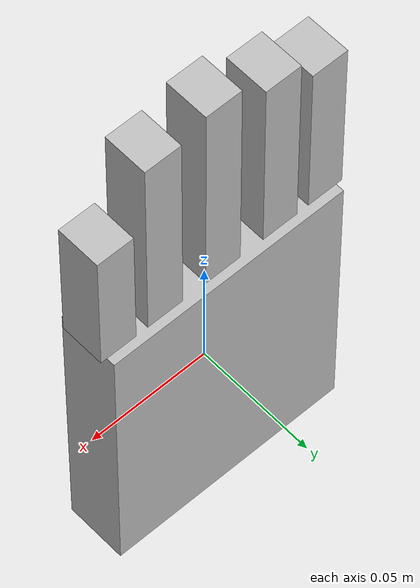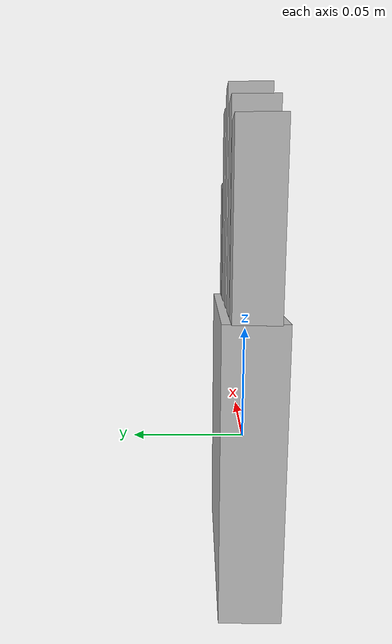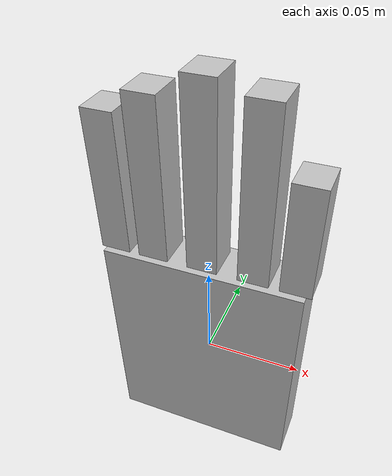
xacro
<?xml version="1.0"?>

<robot
    xmlns:xacro="http://www.ros.org/wiki/xacro"
    name="david_right_hand">

    <!-- MATERIAL -->

    <material name="hand_material">
        <color rgba="0.75 0.75 0.75 1.0"/>
    </material>

    <!-- PALM -->

    <link name="right_palm_link">

        <visual>
            <origin xyz="0 0 0"/>
            <geometry>
                <box size="0.10 0.025 0.12"/>
            </geometry>
            <material name="hand_material"/>
        </visual>

        <collision>
            <origin xyz="0 0 0"/>
            <geometry>
                <box size="0.10 0.025 0.12"/>
            </geometry>
        </collision>

        <inertial>
            <mass value="0.30"/>
            <origin xyz="0 0 0"/>

            <inertia
                ixx="0.0004"
                ixy="0.0"
                ixz="0.0"
                iyy="0.0004"
                iyz="0.0"
                izz="0.0002"/>
        </inertial>

    </link>

    <!-- FINGER MACRO -->

    <xacro:macro
        name="finger"
        params="name x length max_angle">

        <link name="right_${name}_link">

            <visual>
                <origin xyz="0 0 ${length / 2.0}"/>

                <geometry>
                    <box size="0.015 0.018 ${length}"/>
                </geometry>

                <material name="hand_material"/>
            </visual>

            <collision>
                <origin xyz="0 0 ${length / 2.0}"/>

                <geometry>
                    <box size="0.015 0.018 ${length}"/>
                </geometry>
            </collision>

            <inertial>
                <mass value="0.03"/>
                <origin xyz="0 0 ${length / 2.0}"/>

                <inertia
                    ixx="0.00002"
                    ixy="0.0"
                    ixz="0.0"
                    iyy="0.00002"
                    iyz="0.0"
                    izz="0.000005"/>
            </inertial>

        </link>

        <joint
            name="right_${name}_actuator_joint"
            type="revolute">

            <parent link="right_palm_link"/>
            <child link="right_${name}_link"/>

            <origin
                xyz="${x} 0 0.06"
                rpy="0 0 0"/>

            <axis xyz="0 1 0"/>

            <limit
                lower="0.0"
                upper="${max_angle}"
                effort="1.0"
                velocity="3.0"/>

            <dynamics
                damping="0.2"
                friction="0.05"/>

        </joint>

    </xacro:macro>

    <!-- FIVE FINGERS -->

    <xacro:finger
        name="thumb"
        x="0.045"
        length="0.055"
        max_angle="1.0"/>

    <xacro:finger
        name="index"
        x="0.025"
        length="0.085"
        max_angle="1.2"/>

    <xacro:finger
        name="middle"
        x="0.0"
        length="0.090"
        max_angle="1.2"/>

    <xacro:finger
        name="ring"
        x="-0.025"
        length="0.080"
        max_angle="1.2"/>

    <xacro:finger
        name="little"
        x="-0.045"
        length="0.070"
        max_angle="1.2"/>

    <!-- ROS 2 CONTROL -->

    <ros2_control
        name="GazeboSimSystem"
        type="system">

        <hardware>
            <plugin>gz_ros2_control/GazeboSimSystem</plugin>
        </hardware>

        <joint name="right_thumb_actuator_joint">
            <command_interface name="position"/>

            <state_interface name="position">
                <param name="initial_value">0.0</param>
            </state_interface>

            <state_interface name="velocity"/>
        </joint>

        <joint name="right_index_actuator_joint">
            <command_interface name="position"/>

            <state_interface name="position">
                <param name="initial_value">0.0</param>
            </state_interface>

            <state_interface name="velocity"/>
        </joint>

        <joint name="right_middle_actuator_joint">
            <command_interface name="position"/>

            <state_interface name="position">
                <param name="initial_value">0.0</param>
            </state_interface>

            <state_interface name="velocity"/>
        </joint>

        <joint name="right_ring_actuator_joint">
            <command_interface name="position"/>

            <state_interface name="position">
                <param name="initial_value">0.0</param>
            </state_interface>

            <state_interface name="velocity"/>
        </joint>

        <joint name="right_little_actuator_joint">
            <command_interface name="position"/>

            <state_interface name="position">
                <param name="initial_value">0.0</param>
            </state_interface>

            <state_interface name="velocity"/>
        </joint>

    </ros2_control>

    <!-- GAZEBO ROS 2 CONTROL -->

    <gazebo>

        <plugin
            filename="gz_ros2_control-system"
            name="gz_ros2_control::GazeboSimROS2ControlPlugin">

            <parameters>$(find david_hand_description)/config/controllers.yaml</parameters>

        </plugin>

    </gazebo>

</robot>
